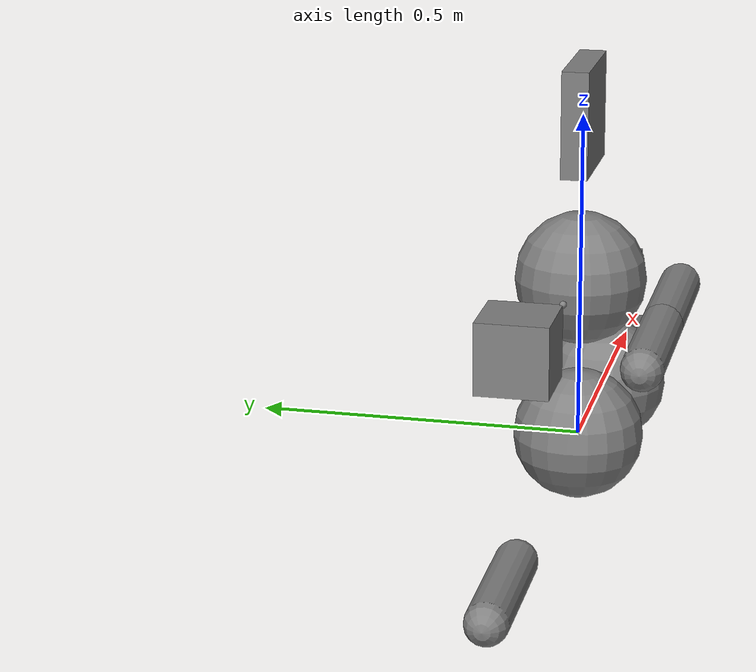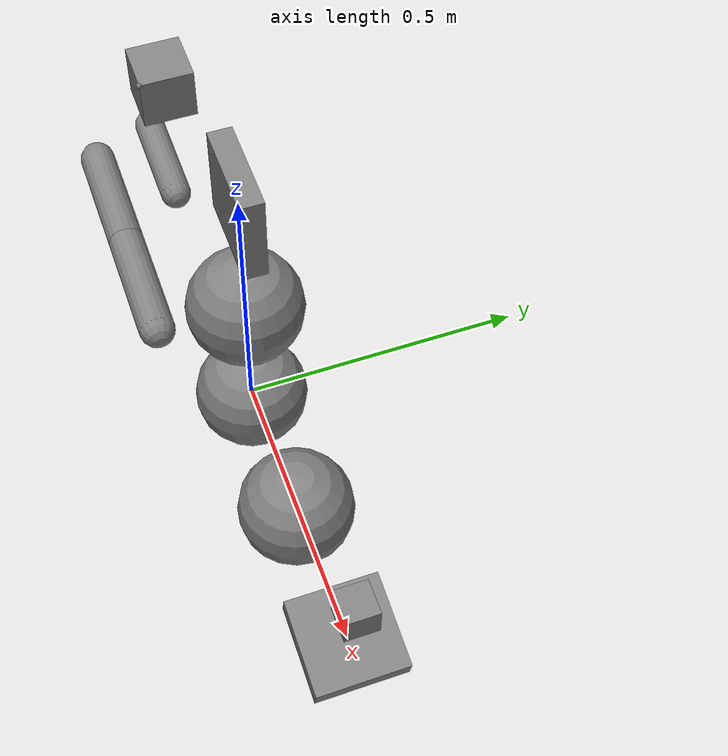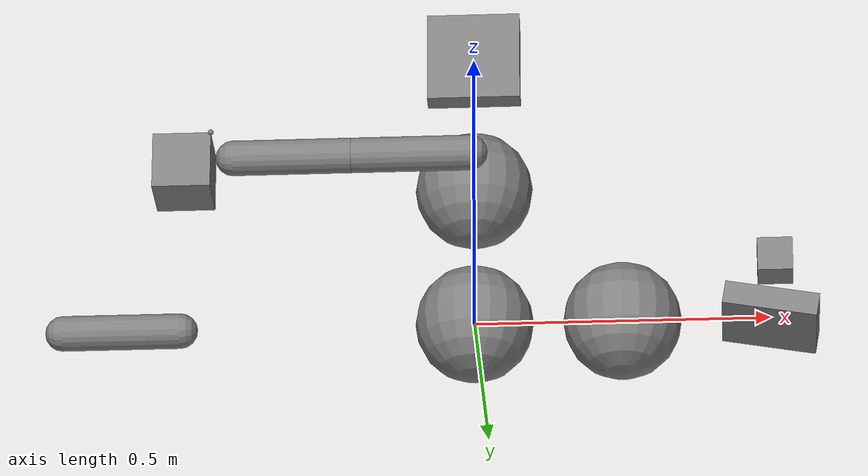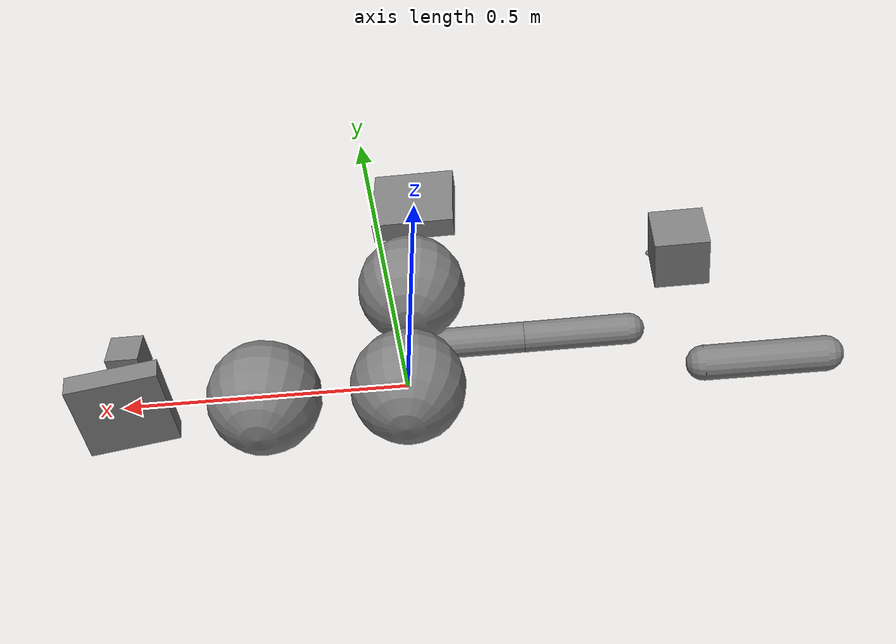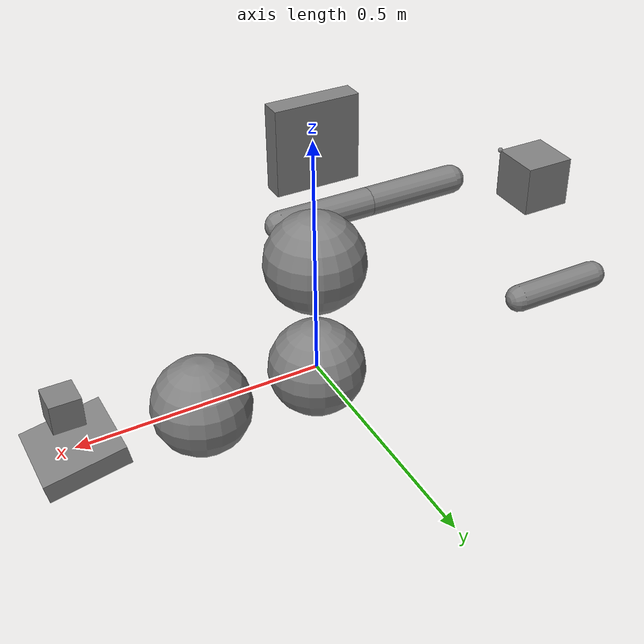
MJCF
<!--
  test model for constraint islanding:
- 7 equalities (1:joint, 6:connect)
- 1 limit
- 2 friction constraints
- 1 unconstrained dof
- 4 islands, 2 with non-contiguous dofs
-->

<mujoco>
  <option>
    <flag island="enable"/>
  </option>

  <default>
    <geom size=".1"/>
  </default>

  <visual>
    <headlight diffuse=".9 .9 .9"/>
  </visual>

  <worldbody>

    <body>
      <joint type="slide" axis="0 0 1" range="0 1" limited="true"/>
      <geom/>
    </body>

    <body pos=".25 0 0">
      <joint type="slide" axis="1 0 0"/>
      <geom/>
    </body>

    <body pos="0 0 0.25">
      <joint type="slide" axis="0 0 1"/>
      <geom/>
      <body pos="0 -.15 0">
        <joint name="hinge1" axis="0 1 0"/>
        <geom type="capsule" size="0.03" fromto="0 0 0 -.2 0 0"/>
        <body pos="-.2 0 0">
          <joint axis="0 1 0"/>
          <geom type="capsule" size="0.03" fromto="0 0 0 -.2 0 0"/>
        </body>
      </body>
    </body>

    <body pos=".5 0 0">
      <joint type="slide" axis="0 0 1" frictionloss="15"/>
      <geom type="box" size=".08 .08 .02" euler="0 10 0"/>
    </body>

    <body pos="-.5 0 0">
      <joint axis="0 1 0" frictionloss=".01"/>
      <geom type="capsule" size="0.03" fromto="0 0 0 -.2 0 0"/>
    </body>

    <body pos="0 0 .5">
      <joint name="hinge2" axis="0 1 0"/>
      <geom type="box" size=".08 .02 .08"/>
    </body>

    <body pos=".5 0 .1">
      <freejoint/>
      <geom type="box" size=".03 .03 .03" pos="0.01 0.01 0.01"/>
    </body>

    <site name="0" pos="-.45 -.05 .35"/>
    <body pos="-.5 0 .3" name="connect">
      <freejoint/>
      <geom type="box" size=".05 .05 .05"/>
      <site name="1" pos=".05 -.05 .05"/>
    </body>
  </worldbody>

  <equality>
    <joint joint1="hinge1" joint2="hinge2"/>
    <connect body1="connect" body2="world" anchor="-.05 -.05 .05"/>
    <connect site1="0" site2="1"/>
  </equality>
</mujoco>
